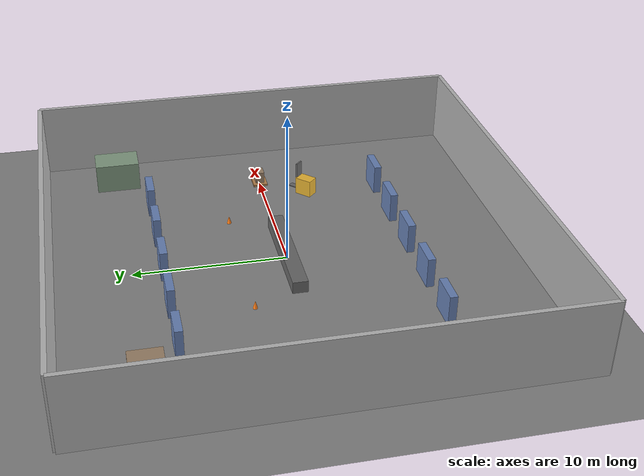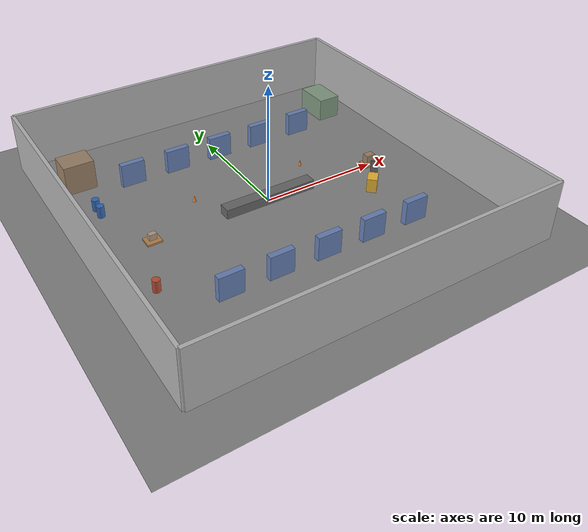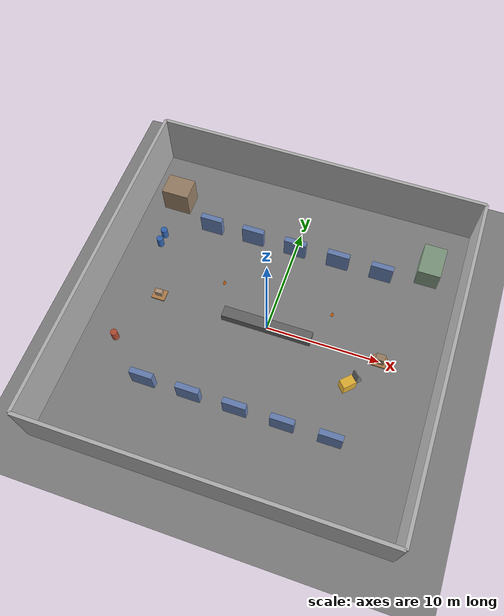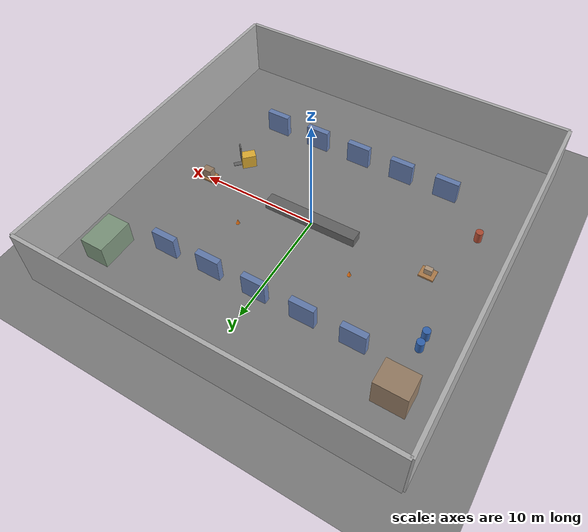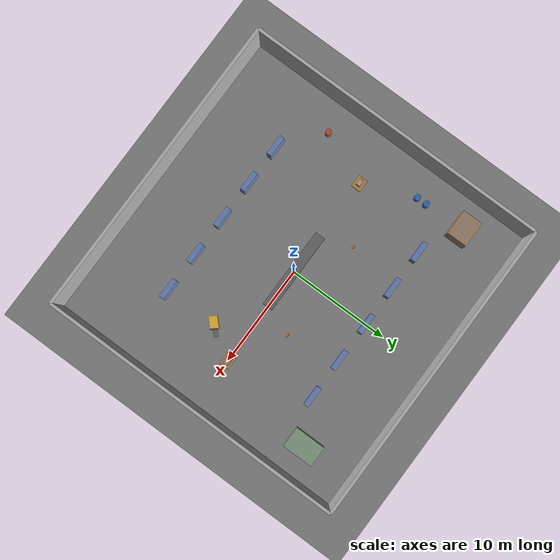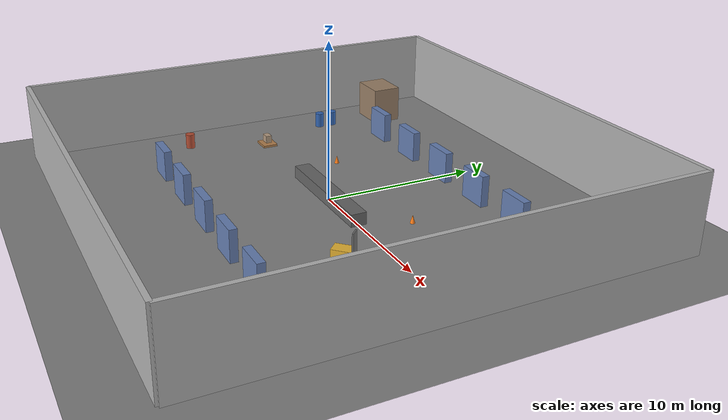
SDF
<?xml version="1.0" ?>
<sdf version="1.6">
  <world name="factory">

    <!-- Physics settings -->
    <physics type="ode">
      <real_time_update_rate>1000.0</real_time_update_rate>
      <max_step_size>0.001</max_step_size>
      <real_time_factor>1</real_time_factor>
      <ode>
        <solver>
          <type>quick</type>
          <iters>150</iters>
          <precon_iters>0</precon_iters>
          <sor>1.400000</sor>
          <use_dynamic_moi_rescaling>1</use_dynamic_moi_rescaling>
        </solver>
        <constraints>
          <cfm>0.00001</cfm>
          <erp>0.2</erp>
          <contact_max_correcting_vel>2000.000000</contact_max_correcting_vel>
          <contact_surface_layer>0.01000</contact_surface_layer>
        </constraints>
      </ode>
    </physics>

    <!-- Sun light -->
    <light name="sun" type="directional">
      <cast_shadows>true</cast_shadows>
      <pose>0 0 50 0 0 0</pose>
      <diffuse>0.8 0.8 0.8 1</diffuse>
      <specular>0.2 0.2 0.2 1</specular>
      <attenuation>
        <range>1000</range>
        <constant>0.9</constant>
        <linear>0.01</linear>
        <quadratic>0.001</quadratic>
      </attenuation>
      <direction>-0.5 0.1 -0.9</direction>
    </light>

    <!-- Factory overhead lights -->
    <light name='factory_light_1' type='point'>
      <pose>5 5 8 0 0 0</pose>
      <diffuse>1 0.95 0.8 1</diffuse>
      <specular>0.5 0.5 0.5 1</specular>
      <attenuation>
        <range>30</range>
        <constant>0.5</constant>
        <linear>0.01</linear>
        <quadratic>0.001</quadratic>
      </attenuation>
      <cast_shadows>false</cast_shadows>
    </light>

    <light name='factory_light_2' type='point'>
      <pose>-5 5 8 0 0 0</pose>
      <diffuse>1 0.95 0.8 1</diffuse>
      <specular>0.5 0.5 0.5 1</specular>
      <attenuation>
        <range>30</range>
        <constant>0.5</constant>
        <linear>0.01</linear>
        <quadratic>0.001</quadratic>
      </attenuation>
      <cast_shadows>false</cast_shadows>
    </light>

    <light name='factory_light_3' type='point'>
      <pose>5 -5 8 0 0 0</pose>
      <diffuse>1 0.95 0.8 1</diffuse>
      <specular>0.5 0.5 0.5 1</specular>
      <attenuation>
        <range>30</range>
        <constant>0.5</constant>
        <linear>0.01</linear>
        <quadratic>0.001</quadratic>
      </attenuation>
      <cast_shadows>false</cast_shadows>
    </light>

    <light name='factory_light_4' type='point'>
      <pose>-5 -5 8 0 0 0</pose>
      <diffuse>1 0.95 0.8 1</diffuse>
      <specular>0.5 0.5 0.5 1</specular>
      <attenuation>
        <range>30</range>
        <constant>0.5</constant>
        <linear>0.01</linear>
        <quadratic>0.001</quadratic>
      </attenuation>
      <cast_shadows>false</cast_shadows>
    </light>

    <!-- Ground plane with industrial texture -->
    <model name="ground_plane">
      <static>true</static>
      <link name="link">
        <collision name="collision">
          <geometry>
            <plane>
              <normal>0 0 1</normal>
              <size>50 50</size>
            </plane>
          </geometry>
          <surface>
            <friction>
              <ode>
                <mu>100</mu>
                <mu2>50</mu2>
              </ode>
            </friction>
          </surface>
        </collision>
        <visual name="visual">
          <cast_shadows>false</cast_shadows>
          <geometry>
            <plane>
              <normal>0 0 1</normal>
              <size>50 50</size>
            </plane>
          </geometry>
          <material>
            <ambient>0.4 0.4 0.4 1</ambient>
            <diffuse>0.5 0.5 0.5 1</diffuse>
            <specular>0.1 0.1 0.1 1</specular>
          </material>
        </visual>
      </link>
    </model>

    <!-- Factory walls -->
    <model name="factory_wall_north">
      <static>true</static>
      <pose>0 15 2.5 0 0 0</pose>
      <link name="link">
        <collision name="collision">
          <geometry><box><size>30 0.3 5</size></box></geometry>
        </collision>
        <visual name="visual">
          <geometry><box><size>30 0.3 5</size></box></geometry>
          <material>
            <ambient>0.6 0.6 0.6 1</ambient>
            <diffuse>0.7 0.7 0.7 1</diffuse>
          </material>
        </visual>
      </link>
    </model>

    <model name="factory_wall_south">
      <static>true</static>
      <pose>0 -15 2.5 0 0 0</pose>
      <link name="link">
        <collision name="collision">
          <geometry><box><size>30 0.3 5</size></box></geometry>
        </collision>
        <visual name="visual">
          <geometry><box><size>30 0.3 5</size></box></geometry>
          <material>
            <ambient>0.6 0.6 0.6 1</ambient>
            <diffuse>0.7 0.7 0.7 1</diffuse>
          </material>
        </visual>
      </link>
    </model>

    <model name="factory_wall_east">
      <static>true</static>
      <pose>15 0 2.5 0 0 1.5707</pose>
      <link name="link">
        <collision name="collision">
          <geometry><box><size>30 0.3 5</size></box></geometry>
        </collision>
        <visual name="visual">
          <geometry><box><size>30 0.3 5</size></box></geometry>
          <material>
            <ambient>0.6 0.6 0.6 1</ambient>
            <diffuse>0.7 0.7 0.7 1</diffuse>
          </material>
        </visual>
      </link>
    </model>

    <model name="factory_wall_west">
      <static>true</static>
      <pose>-15 0 2.5 0 0 1.5707</pose>
      <link name="link">
        <collision name="collision">
          <geometry><box><size>30 0.3 5</size></box></geometry>
        </collision>
        <visual name="visual">
          <geometry><box><size>30 0.3 5</size></box></geometry>
          <material>
            <ambient>0.6 0.6 0.6 1</ambient>
            <diffuse>0.7 0.7 0.7 1</diffuse>
          </material>
        </visual>
      </link>
    </model>

    <!-- Warehouse shelving units - Row 1 -->
    <model name="shelf_1_1">
      <static>true</static>
      <pose>-8 8 1.0 0 0 0</pose>
      <link name="link">
        <collision name="collision">
          <geometry><box><size>2 0.5 2</size></box></geometry>
        </collision>
        <visual name="visual">
          <geometry><box><size>2 0.5 2</size></box></geometry>
          <material>
            <ambient>0.3 0.4 0.6 1</ambient>
            <diffuse>0.4 0.5 0.7 1</diffuse>
          </material>
        </visual>
      </link>
    </model>

    <model name="shelf_1_2">
      <static>true</static>
      <pose>-4 8 1.0 0 0 0</pose>
      <link name="link">
        <collision name="collision">
          <geometry><box><size>2 0.5 2</size></box></geometry>
        </collision>
        <visual name="visual">
          <geometry><box><size>2 0.5 2</size></box></geometry>
          <material>
            <ambient>0.3 0.4 0.6 1</ambient>
            <diffuse>0.4 0.5 0.7 1</diffuse>
          </material>
        </visual>
      </link>
    </model>

    <model name="shelf_1_3">
      <static>true</static>
      <pose>0 8 1.0 0 0 0</pose>
      <link name="link">
        <collision name="collision">
          <geometry><box><size>2 0.5 2</size></box></geometry>
        </collision>
        <visual name="visual">
          <geometry><box><size>2 0.5 2</size></box></geometry>
          <material>
            <ambient>0.3 0.4 0.6 1</ambient>
            <diffuse>0.4 0.5 0.7 1</diffuse>
          </material>
        </visual>
      </link>
    </model>

    <model name="shelf_1_4">
      <static>true</static>
      <pose>4 8 1.0 0 0 0</pose>
      <link name="link">
        <collision name="collision">
          <geometry><box><size>2 0.5 2</size></box></geometry>
        </collision>
        <visual name="visual">
          <geometry><box><size>2 0.5 2</size></box></geometry>
          <material>
            <ambient>0.3 0.4 0.6 1</ambient>
            <diffuse>0.4 0.5 0.7 1</diffuse>
          </material>
        </visual>
      </link>
    </model>

    <model name="shelf_1_5">
      <static>true</static>
      <pose>8 8 1.0 0 0 0</pose>
      <link name="link">
        <collision name="collision">
          <geometry><box><size>2 0.5 2</size></box></geometry>
        </collision>
        <visual name="visual">
          <geometry><box><size>2 0.5 2</size></box></geometry>
          <material>
            <ambient>0.3 0.4 0.6 1</ambient>
            <diffuse>0.4 0.5 0.7 1</diffuse>
          </material>
        </visual>
      </link>
    </model>

    <!-- Warehouse shelving units - Row 2 -->
    <model name="shelf_2_1">
      <static>true</static>
      <pose>-8 -8 1.0 0 0 0</pose>
      <link name="link">
        <collision name="collision">
          <geometry><box><size>2 0.5 2</size></box></geometry>
        </collision>
        <visual name="visual">
          <geometry><box><size>2 0.5 2</size></box></geometry>
          <material>
            <ambient>0.3 0.4 0.6 1</ambient>
            <diffuse>0.4 0.5 0.7 1</diffuse>
          </material>
        </visual>
      </link>
    </model>

    <model name="shelf_2_2">
      <static>true</static>
      <pose>-4 -8 1.0 0 0 0</pose>
      <link name="link">
        <collision name="collision">
          <geometry><box><size>2 0.5 2</size></box></geometry>
        </collision>
        <visual name="visual">
          <geometry><box><size>2 0.5 2</size></box></geometry>
          <material>
            <ambient>0.3 0.4 0.6 1</ambient>
            <diffuse>0.4 0.5 0.7 1</diffuse>
          </material>
        </visual>
      </link>
    </model>

    <model name="shelf_2_3">
      <static>true</static>
      <pose>0 -8 1.0 0 0 0</pose>
      <link name="link">
        <collision name="collision">
          <geometry><box><size>2 0.5 2</size></box></geometry>
        </collision>
        <visual name="visual">
          <geometry><box><size>2 0.5 2</size></box></geometry>
          <material>
            <ambient>0.3 0.4 0.6 1</ambient>
            <diffuse>0.4 0.5 0.7 1</diffuse>
          </material>
        </visual>
      </link>
    </model>

    <model name="shelf_2_4">
      <static>true</static>
      <pose>4 -8 1.0 0 0 0</pose>
      <link name="link">
        <collision name="collision">
          <geometry><box><size>2 0.5 2</size></box></geometry>
        </collision>
        <visual name="visual">
          <geometry><box><size>2 0.5 2</size></box></geometry>
          <material>
            <ambient>0.3 0.4 0.6 1</ambient>
            <diffuse>0.4 0.5 0.7 1</diffuse>
          </material>
        </visual>
      </link>
    </model>

    <model name="shelf_2_5">
      <static>true</static>
      <pose>8 -8 1.0 0 0 0</pose>
      <link name="link">
        <collision name="collision">
          <geometry><box><size>2 0.5 2</size></box></geometry>
        </collision>
        <visual name="visual">
          <geometry><box><size>2 0.5 2</size></box></geometry>
          <material>
            <ambient>0.3 0.4 0.6 1</ambient>
            <diffuse>0.4 0.5 0.7 1</diffuse>
          </material>
        </visual>
      </link>
    </model>

    <!-- Pallets with boxes -->
    <model name="pallet_1">
      <static>true</static>
      <pose>-10 0 0.15 0 0 0</pose>
      <link name="link">
        <collision name="collision">
          <geometry><box><size>1.2 1.0 0.15</size></box></geometry>
        </collision>
        <visual name="visual">
          <geometry><box><size>1.2 1.0 0.15</size></box></geometry>
          <material>
            <ambient>0.6 0.4 0.2 1</ambient>
            <diffuse>0.7 0.5 0.3 1</diffuse>
          </material>
        </visual>
      </link>
    </model>

    <model name="box_on_pallet_1">
      <static>true</static>
      <pose>-10 0 0.55 0 0 0</pose>
      <link name="link">
        <collision name="collision">
          <geometry><box><size>0.6 0.4 0.5</size></box></geometry>
        </collision>
        <visual name="visual">
          <geometry><box><size>0.6 0.4 0.5</size></box></geometry>
          <material>
            <ambient>0.6 0.5 0.4 1</ambient>
            <diffuse>0.7 0.6 0.5 1</diffuse>
          </material>
        </visual>
      </link>
    </model>

    <model name="pallet_2">
      <static>true</static>
      <pose>10 0 0.15 0 0 0</pose>
      <link name="link">
        <collision name="collision">
          <geometry><box><size>1.2 1.0 0.15</size></box></geometry>
        </collision>
        <visual name="visual">
          <geometry><box><size>1.2 1.0 0.15</size></box></geometry>
          <material>
            <ambient>0.6 0.4 0.2 1</ambient>
            <diffuse>0.7 0.5 0.3 1</diffuse>
          </material>
        </visual>
      </link>
    </model>

    <model name="boxes_on_pallet_2">
      <static>true</static>
      <pose>10 0 0.65 0 0 0</pose>
      <link name="link">
        <collision name="collision">
          <geometry><box><size>0.8 0.6 0.8</size></box></geometry>
        </collision>
        <visual name="visual">
          <geometry><box><size>0.8 0.6 0.8</size></box></geometry>
          <material>
            <ambient>0.5 0.4 0.3 1</ambient>
            <diffuse>0.6 0.5 0.4 1</diffuse>
          </material>
        </visual>
      </link>
    </model>

    <!-- Industrial barrels -->
    <model name="barrel_1">
      <static>true</static>
      <pose>-12 5 0.5 0 0 0</pose>
      <link name="link">
        <collision name="collision">
          <geometry><cylinder><radius>0.3</radius><length>1.0</length></cylinder></geometry>
        </collision>
        <visual name="visual">
          <geometry><cylinder><radius>0.3</radius><length>1.0</length></cylinder></geometry>
          <material>
            <ambient>0.1 0.3 0.6 1</ambient>
            <diffuse>0.2 0.4 0.7 1</diffuse>
          </material>
        </visual>
      </link>
    </model>

    <model name="barrel_2">
      <static>true</static>
      <pose>-12 6 0.5 0 0 0</pose>
      <link name="link">
        <collision name="collision">
          <geometry><cylinder><radius>0.3</radius><length>1.0</length></cylinder></geometry>
        </collision>
        <visual name="visual">
          <geometry><cylinder><radius>0.3</radius><length>1.0</length></cylinder></geometry>
          <material>
            <ambient>0.1 0.3 0.6 1</ambient>
            <diffuse>0.2 0.4 0.7 1</diffuse>
          </material>
        </visual>
      </link>
    </model>

    <model name="barrel_3">
      <static>true</static>
      <pose>-12 -5 0.5 0 0 0</pose>
      <link name="link">
        <collision name="collision">
          <geometry><cylinder><radius>0.3</radius><length>1.0</length></cylinder></geometry>
        </collision>
        <visual name="visual">
          <geometry><cylinder><radius>0.3</radius><length>1.0</length></cylinder></geometry>
          <material>
            <ambient>0.6 0.2 0.1 1</ambient>
            <diffuse>0.7 0.3 0.2 1</diffuse>
          </material>
        </visual>
      </link>
    </model>

    <!-- Conveyor (static representation) -->
    <model name="conveyor">
      <static>true</static>
      <pose>0 0 0.4 0 0 0</pose>
      <link name="link">
        <collision name="collision">
          <geometry><box><size>8 1.0 0.8</size></box></geometry>
        </collision>
        <visual name="visual">
          <geometry><box><size>8 1.0 0.8</size></box></geometry>
          <material>
            <ambient>0.3 0.3 0.3 1</ambient>
            <diffuse>0.4 0.4 0.4 1</diffuse>
          </material>
        </visual>
      </link>
    </model>

    <model name="conveyor_legs_1">
      <static>true</static>
      <pose>-3 0 0.2 0 0 0</pose>
      <link name="link">
        <collision name="collision">
          <geometry><box><size>0.1 0.8 0.4</size></box></geometry>
        </collision>
        <visual name="visual">
          <geometry><box><size>0.1 0.8 0.4</size></box></geometry>
          <material>
            <ambient>0.5 0.5 0.5 1</ambient>
            <diffuse>0.6 0.6 0.6 1</diffuse>
          </material>
        </visual>
      </link>
    </model>

    <model name="conveyor_legs_2">
      <static>true</static>
      <pose>3 0 0.2 0 0 0</pose>
      <link name="link">
        <collision name="collision">
          <geometry><box><size>0.1 0.8 0.4</size></box></geometry>
        </collision>
        <visual name="visual">
          <geometry><box><size>0.1 0.8 0.4</size></box></geometry>
          <material>
            <ambient>0.5 0.5 0.5 1</ambient>
            <diffuse>0.6 0.6 0.6 1</diffuse>
          </material>
        </visual>
      </link>
    </model>

    <!-- Industrial machinery (static decoration) -->
    <model name="machine_1">
      <static>true</static>
      <pose>12 10 1.0 0 0 0</pose>
      <link name="link">
        <collision name="collision">
          <geometry><box><size>2 3 2</size></box></geometry>
        </collision>
        <visual name="visual">
          <geometry><box><size>2 3 2</size></box></geometry>
          <material>
            <ambient>0.4 0.5 0.4 1</ambient>
            <diffuse>0.5 0.6 0.5 1</diffuse>
          </material>
        </visual>
      </link>
    </model>

    <model name="machine_2">
      <static>true</static>
      <pose>-12 10 1.25 0 0 0</pose>
      <link name="link">
        <collision name="collision">
          <geometry><box><size>2.5 2 2.5</size></box></geometry>
        </collision>
        <visual name="visual">
          <geometry><box><size>2.5 2 2.5</size></box></geometry>
          <material>
            <ambient>0.5 0.4 0.3 1</ambient>
            <diffuse>0.6 0.5 0.4 1</diffuse>
          </material>
        </visual>
      </link>
    </model>

    <!-- Forklift (static decoration) -->
    <model name="forklift">
      <static>true</static>
      <pose>8 -3 0 0 0 0.785</pose>
      <link name="body">
        <pose>0 0 0.6 0 0 0</pose>
        <collision name="collision">
          <geometry><box><size>1.2 0.8 1.2</size></box></geometry>
        </collision>
        <visual name="visual">
          <geometry><box><size>1.2 0.8 1.2</size></box></geometry>
          <material>
            <ambient>0.8 0.6 0.1 1</ambient>
            <diffuse>0.9 0.7 0.2 1</diffuse>
          </material>
        </visual>
      </link>
      <link name="mast">
        <pose>0.6 0 1.5 0 0 0</pose>
        <collision name="collision">
          <geometry><box><size>0.1 0.6 1.5</size></box></geometry>
        </collision>
        <visual name="visual">
          <geometry><box><size>0.1 0.6 1.5</size></box></geometry>
          <material>
            <ambient>0.3 0.3 0.3 1</ambient>
            <diffuse>0.4 0.4 0.4 1</diffuse>
          </material>
        </visual>
      </link>
      <link name="forks">
        <pose>0.8 0 0.3 0 0 0</pose>
        <collision name="collision">
          <geometry><box><size>1.0 0.4 0.05</size></box></geometry>
        </collision>
        <visual name="visual">
          <geometry><box><size>1.0 0.4 0.05</size></box></geometry>
          <material>
            <ambient>0.3 0.3 0.3 1</ambient>
            <diffuse>0.4 0.4 0.4 1</diffuse>
          </material>
        </visual>
      </link>
    </model>

    <!-- Safety cones -->
    <model name="cone_1">
      <static>true</static>
      <pose>5 3 0.25 0 0 0</pose>
      <link name="link">
        <collision name="collision">
          <geometry><cone><radius>0.15</radius><length>0.5</length></cone></geometry>
        </collision>
        <visual name="visual">
          <geometry><cone><radius>0.15</radius><length>0.5</length></cone></geometry>
          <material>
            <ambient>0.9 0.4 0.1 1</ambient>
            <diffuse>1.0 0.5 0.1 1</diffuse>
          </material>
        </visual>
      </link>
    </model>

    <model name="cone_2">
      <static>true</static>
      <pose>-5 3 0.25 0 0 0</pose>
      <link name="link">
        <collision name="collision">
          <geometry><cone><radius>0.15</radius><length>0.5</length></cone></geometry>
        </collision>
        <visual name="visual">
          <geometry><cone><radius>0.15</radius><length>0.5</length></cone></geometry>
          <material>
            <ambient>0.9 0.4 0.1 1</ambient>
            <diffuse>1.0 0.5 0.1 1</diffuse>
          </material>
        </visual>
      </link>
    </model>

  </world>
</sdf>
